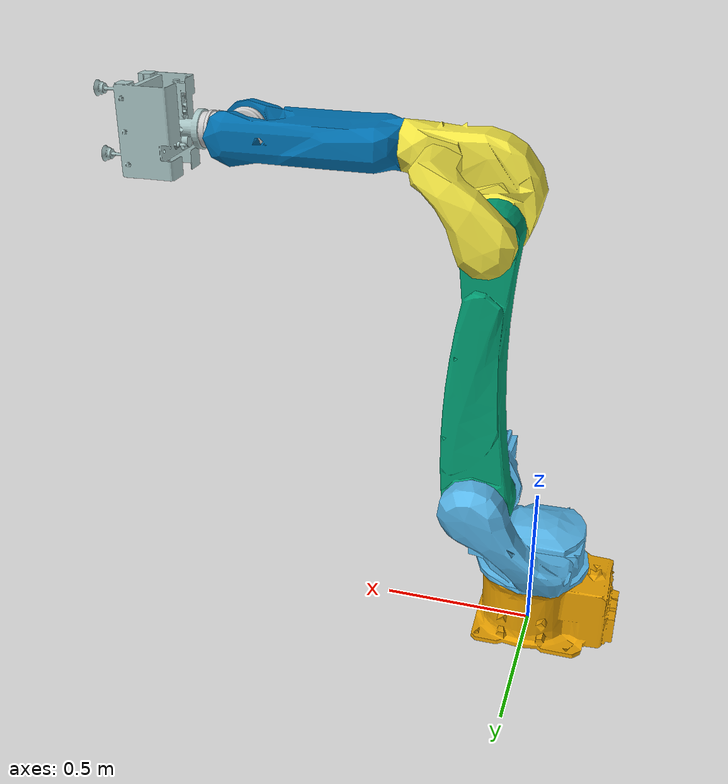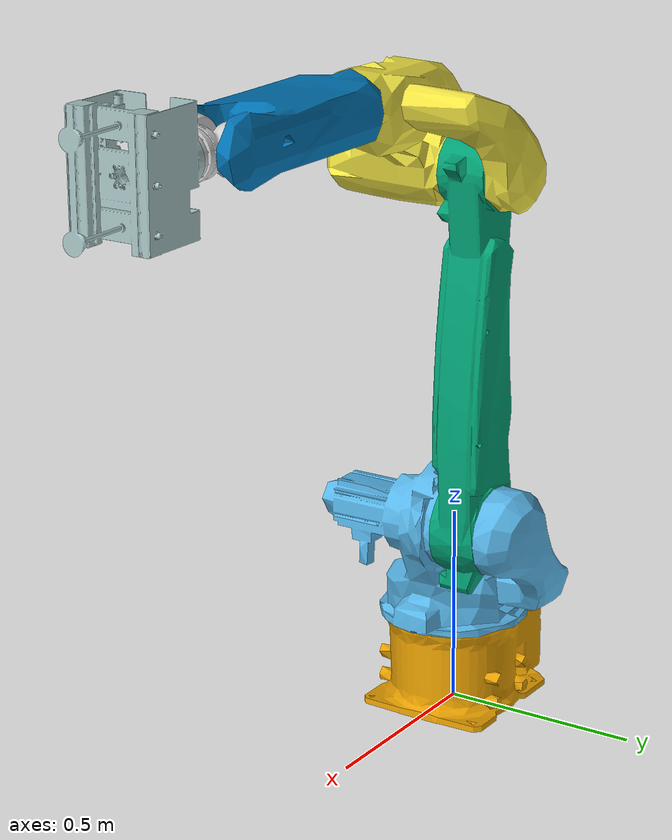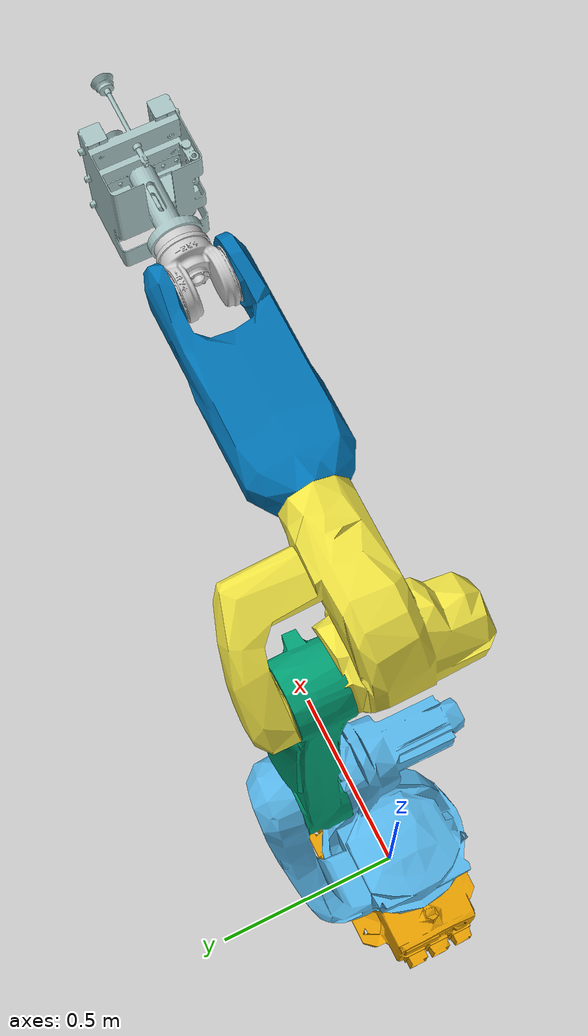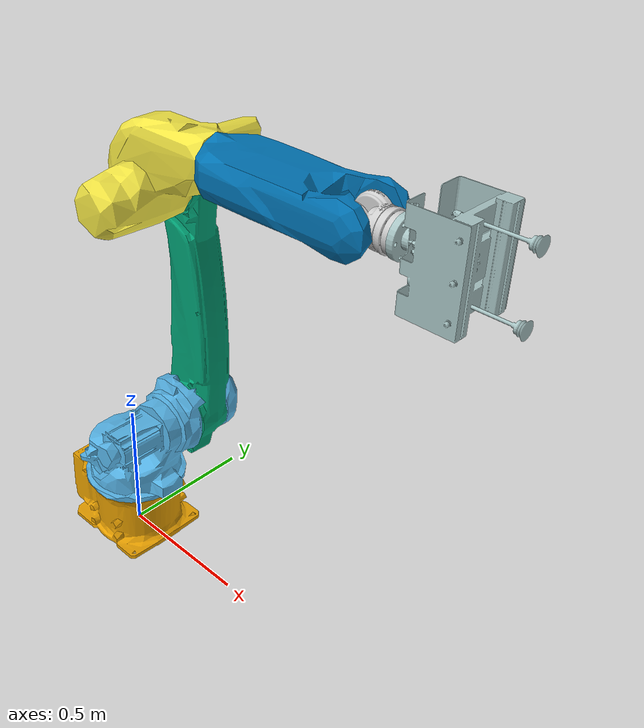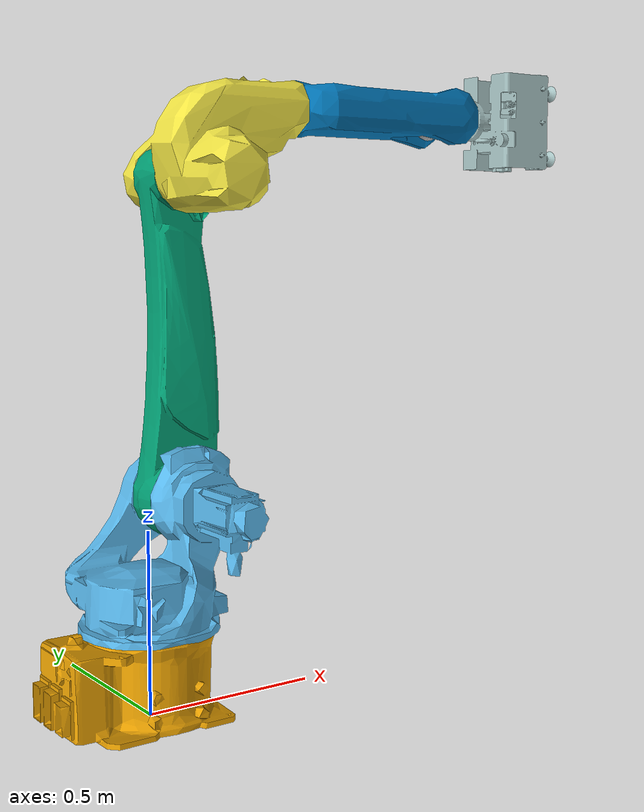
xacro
<?xml version="1.0" encoding="utf-8"?>
<robot xmlns:xacro="http://www.ros.org/wiki/xacro" name="mz25">
  <xacro:include filename="mz25_components/mz25_arm.xacro"/>
  <xacro:include filename="mz25_components/vacuum_gripper.xacro"/>
  <xacro:include filename="mz25_components/mz25_arm.ros2_control.xacro"/>

  <!-- for simulation -->
  <!-- end for simulation -->

  <xacro:mz25_arm />
  <xacro:mz25_system name="MZ25System" />
  <xacro:vacuum_gripper ns="mz25" xyz="0.014 0 0" rpy="${pi/2} 0 0" connected_to="mz25_link6"/>

  <!-- for simulation -->
  <!-- end for simulation -->
</robot>

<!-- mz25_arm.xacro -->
<robot xmlns:xacro="http://www.ros.org/wiki/xacro" name="mz25">
  <xacro:macro name="mz25_arm" params="arm_id:='mz25' description_pkg:='mz25_robot_description' connected_to:='' xyz:='0 0 0' rpy:='0 0 0'">
    <xacro:unless value="${not connected_to}">
      <joint name="${arm_id}_joint_${connected_to}" type="fixed">
        <parent link="${connected_to}"/>
        <child link="${arm_id}_link0"/>
        <origin rpy="${rpy}" xyz="${xyz}"/>
      </joint>
    </xacro:unless>

    <!-- for simulation -->

    <xacro:property name="joint_damping" value="1.0"/>
    <!-- end for simulation -->

    <link name="${arm_id}_link0">
      <visual>
        <geometry>
          <mesh filename="package://${description_pkg}/meshes/visual/link0.dae"/>
        </geometry>
      </visual>
      <collision>
        <geometry>
          <mesh filename="package://${description_pkg}/meshes/collision/link0.stl"/>
        </geometry>
      </collision>
    </link>
    <link name="${arm_id}_link1">
      <visual>
        <geometry>
          <mesh filename="package://${description_pkg}/meshes/visual/link1.dae"/>
        </geometry>
      </visual>
      <collision>
        <geometry>
          <mesh filename="package://${description_pkg}/meshes/collision/link1.stl"/>
        </geometry>
      </collision>

      <!-- for simulation -->
      <inertial>
        <origin xyz="0 0 0" rpy="0 0 0" />
        <mass value="2.34" />
        <inertia ixx="0.3" ixy="0.0" ixz="0.0" iyy="0.3" iyz="0.0" izz="0.3" />
      </inertial>
      <!-- end for simulation -->
    </link>
    <joint name="${arm_id}_joint1" type="revolute">
      <safety_controller k_position="100.0" k_velocity="40.0" soft_lower_limit="-2.97" soft_upper_limit="2.97"/>
      <origin rpy="0 0 0" xyz="0 0 0.2495"/>
      <parent link="${arm_id}_link0"/>
      <child link="${arm_id}_link1"/>
      <axis xyz="0 0 1"/>
      <limit effort="400" lower="-2.97" upper="2.97" velocity="3.67"/>

      <!-- for simulation -->
      <dynamics damping="${joint_damping}"/>
      <!-- end for simulation -->
    </joint>
    <link name="${arm_id}_link2">
      <visual>
        <geometry>
          <mesh filename="package://${description_pkg}/meshes/visual/link2.dae"/>
        </geometry>
      </visual>
      <collision>
        <geometry>
          <mesh filename="package://${description_pkg}/meshes/collision/link2.stl"/>
        </geometry>
      </collision>

      <!-- for simulation -->
      <inertial>
        <origin xyz="0 0 0" rpy="0 0 0" />
        <mass value="23.6" />
        <inertia ixx="0.3" ixy="0.0" ixz="0.0" iyy="0.3" iyz="0.0" izz="0.3" />
      </inertial>
      <!-- end for simulation -->
    </link>
    <joint name="${arm_id}_joint2" type="revolute">
      <safety_controller k_position="100.0" k_velocity="40.0" soft_lower_limit="-2.62" soft_upper_limit="1.83"/>
      <origin rpy="0 0 ${-pi/2}" xyz="0.17 0.157 0.3005"/>
      <parent link="${arm_id}_link1"/>
      <child link="${arm_id}_link2"/>
      <axis xyz="1 0 0"/>
      <limit effort="400" lower="-2.62" upper="1.83" velocity="3.23"/>

      <!-- for simulation -->
      <dynamics damping="${joint_damping}"/>
      <!-- end for simulation -->
    </joint>
    <link name="${arm_id}_link3">
      <visual>
        <geometry>
          <mesh filename="package://${description_pkg}/meshes/visual/link3.dae"/>
        </geometry>
      </visual>
      <collision>
        <geometry>
          <mesh filename="package://${description_pkg}/meshes/collision/link3.stl"/>
        </geometry>
      </collision>

      <!-- for simulation -->
      <inertial>
        <origin xyz="0 0 0" rpy="0 0 0" />
        <mass value="23.8" />
        <inertia ixx="0.3" ixy="0.0" ixz="0.0" iyy="0.3" iyz="0.0" izz="0.3" />
      </inertial>
      <!-- end for simulation -->
    </link>
    <joint name="${arm_id}_joint3" type="revolute">
      <safety_controller k_position="100.0" k_velocity="40.0" soft_lower_limit="-1.43" soft_upper_limit="3.21"/>
      <origin rpy="0 0 ${pi/2}" xyz="0.157 0 0.88"/>
      <parent link="${arm_id}_link2"/>
      <child link="${arm_id}_link3"/>
      <axis xyz="0 -1 0"/>
      <limit effort="400" lower="-1.43" upper="3.21" velocity="4.71"/>

      <!-- for simulation -->
      <dynamics damping="${joint_damping}"/>
      <!-- end for simulation -->
    </joint>
    <link name="${arm_id}_link4">
      <visual>
        <geometry>
          <mesh filename="package://${description_pkg}/meshes/visual/link4.dae"/>
        </geometry>
      </visual>
      <collision>
        <geometry>
          <mesh filename="package://${description_pkg}/meshes/collision/link4.stl"/>
        </geometry>
      </collision>

      <!-- for simulation -->
      <inertial>
        <origin xyz="0 0 0" rpy="0 0 0" />
        <mass value="24.3" />
        <inertia ixx="0.3" ixy="0.0" ixz="0.0" iyy="0.3" iyz="0.0" izz="0.3" />
      </inertial>
      <!-- end for simulation -->
    </link>
    <joint name="${arm_id}_joint4" type="revolute">
      <safety_controller k_position="100.0" k_velocity="40.0" soft_lower_limit="-3.32" soft_upper_limit="3.32"/>
      <origin rpy="0 0 0" xyz="0.81 0 0.19"/>
      <parent link="${arm_id}_link3"/>
      <child link="${arm_id}_link4"/>
      <axis xyz="1 0 0"/>
      <limit effort="400" lower="-3.32" upper="3.32" velocity="7.33"/>

      <!-- for simulation -->
      <dynamics damping="${joint_damping}"/>
      <!-- end for simulation -->
    </joint>
    <link name="${arm_id}_link5">
      <visual>
        <geometry>
          <mesh filename="package://${description_pkg}/meshes/visual/link5.dae"/>
        </geometry>
      </visual>
      <collision>
        <geometry>
          <mesh filename="package://${description_pkg}/meshes/collision/link5.stl"/>
        </geometry>
      </collision>

      <!-- for simulation -->
      <inertial>
        <origin xyz="0 0 0" rpy="0 0 0" />
        <mass value="35" />
        <inertia ixx="0.3" ixy="0.0" ixz="0.0" iyy="0.3" iyz="0.0" izz="0.3" />
      </inertial>
      <!-- end for simulation -->
    </link>
    <joint name="${arm_id}_joint5" type="revolute">
      <safety_controller k_position="100.0" k_velocity="40.0" soft_lower_limit="-2.53" soft_upper_limit="2.53"/>
      <origin rpy="0 0 0" xyz="0 0 0"/>
      <parent link="${arm_id}_link4"/>
      <child link="${arm_id}_link5"/>
      <axis xyz="0 -1 0"/>
      <limit effort="60" lower="-2.53" upper="2.53" velocity="7.33"/>

      <!-- for simulation -->
      <dynamics damping="${joint_damping}"/>
      <!-- end for simulation -->
    </joint>
    <link name="${arm_id}_link6">
      <visual>
        <geometry>
          <mesh filename="package://${description_pkg}/meshes/visual/link6.dae"/>
        </geometry>
      </visual>
      <collision>
        <geometry>
          <mesh filename="package://${description_pkg}/meshes/collision/link6.stl"/>
        </geometry>
      </collision>

      <!-- for simulation -->
      <inertial>
        <origin xyz="0 0 0" rpy="0 0 0" />
        <mass value="1.47" />
        <inertia ixx="0.3" ixy="0.0" ixz="0.0" iyy="0.3" iyz="0.0" izz="0.3" />
      </inertial>
      <!-- end for simulation -->
    </link>
    <joint name="${arm_id}_joint6" type="revolute">
      <safety_controller k_position="100.0" k_velocity="40.0" soft_lower_limit="-6.28" soft_upper_limit="6.28"/>
      <origin rpy="0 0 0" xyz="0.101 0 0"/>
      <parent link="${arm_id}_link5"/>
      <child link="${arm_id}_link6"/>
      <axis xyz="1 0 0"/>
      <limit effort="12" lower="-6.28" upper="6.28" velocity="11.73"/>

      <!-- for simulation -->
      <dynamics damping="${joint_damping}"/>
      <!-- end for simulation -->
    </joint>
  </xacro:macro>
</robot>

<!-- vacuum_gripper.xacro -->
<robot xmlns:xacro="http://www.ros.org/wiki/xacro" name="vacuum_gripper">
  <xacro:macro name="vacuum_gripper" params="connected_to:='' description_pkg:='mz25_robot_description' ns:='' rpy:='0 0 0' xyz:='0 0 0' ">
    <xacro:unless value="${connected_to == ''}">
      <joint name="${ns}_vacuum_gripper_joint" type="fixed">
        <parent link="${connected_to}"/>
        <child link="${ns}_vacuum_gripper"/>
        <origin xyz="${xyz}" rpy="${rpy}"/>
      </joint>
    </xacro:unless>
    <link name="${ns}_vacuum_gripper">
      <visual>
        <geometry>
          <mesh filename="package://${description_pkg}/meshes/visual/vacuum_gripper.dae"/>
        </geometry>
      </visual>
      <collision>
        <geometry>
          <mesh filename="package://${description_pkg}/meshes/collision/vacuum_gripper.stl"/>
        </geometry>
      </collision>

      <!-- for simulation -->
      <inertial>
        <origin xyz="0 0 0" rpy="0 0 0" />
        <mass value="2" />
        <inertia ixx="0.1" ixy="0.0" ixz="0.0" iyy="0.1" iyz="0.0" izz="0.1" />
      </inertial>
      <!-- end for simulation -->
    </link>
    <link name="tcp"/>
    <joint name="tcp_joint" type="fixed">
      <origin xyz="0.35 0 0" rpy="${pi/2} 0 ${pi/2}" />
      <parent link="${ns}_vacuum_gripper" />
      <child link="tcp" />
      <axis xyz="0 0 0" />
    </joint>
  </xacro:macro>
</robot>
